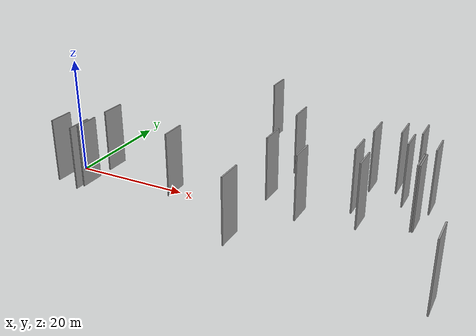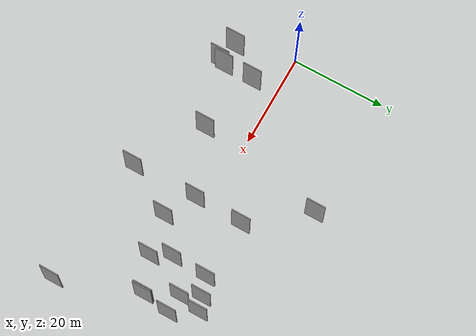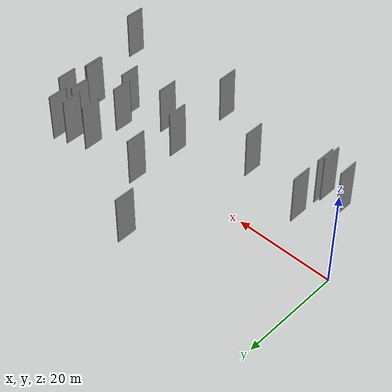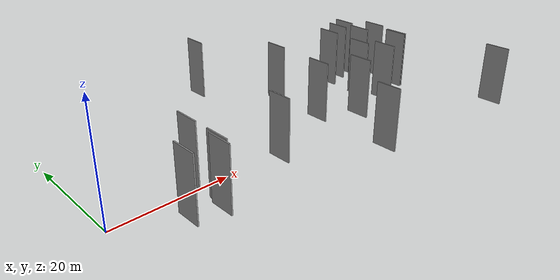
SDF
<sdf version="1.6">
 <world name="default">
  <scene>
   <sky><clouds><speed>12</speed></clouds></sky>
   <ambient>0.4 0.4 0.4 1</ambient>
   <background>0.7 0.7 0.7 1</background>
   <shadows>1</shadows>
  </scene>
  <gravity>0 0 -9.8066</gravity>
  <magnetic_field>6e-06 2.3e-05 -4.2e-05</magnetic_field>
  <physics default="0" name="default_physics" type="ode">
   <ode>
    <solver>
     <type>quick</type>
     <iters>10</iters>
     <sor>1.0</sor>
     <use_dynamic_moi_rescaling>0</use_dynamic_moi_rescaling>
    </solver>
    <constraints>
     <cfm>0</cfm>
     <erp>0.2</erp>
     <contact_max_correcting_vel>100</contact_max_correcting_vel>
     <contact_surface_layer>0.001</contact_surface_layer>
    </constraints>
   </ode>
   <max_step_size>0.004</max_step_size>
   <real_time_factor>1</real_time_factor>
   <real_time_update_rate>250</real_time_update_rate>
  </physics>
  <light name="sun" type="directional">
   <pose>0 0 10 0 0 0</pose>
   <diffuse>0.8 0.8 0.8 1</diffuse>
   <specular>0.2 0.2 0.2 1</specular>
   <attenuation>
    <range>1000</range>
    <constant>0.9</constant>
    <linear>0.01</linear>
    <quadratic>0.001</quadratic>
   </attenuation>
   <direction>-0.5 0.1 -0.9</direction>
  </light>
  <model name="grey_wall_1">
   <static>1</static>
   <pose>56.7683 9.6143 5.0 0.000000 0.000000 1.570796</pose>
   <link name="link">
    <pose>0 0 5.00 0 0 0</pose>
    <collision name="collision"><geometry><box><size>4.00 0.2 10.00</size></box></geometry></collision>
    <visual name="visual">
     <cast_shadows>0</cast_shadows>
     <geometry><box><size>4.00 0.2 10.00</size></box></geometry>
     <material>
      <script>
       <uri>model://grey_wall/materials/scripts</uri>
       <uri>model://grey_wall/materials/textures</uri>
       <name>vrc/grey_wall</name>
      </script>
     </material>
    </visual>
   </link>
  </model>
  <model name="grey_wall_2">
   <static>1</static>
   <pose>28.8676 19.4419 5.0 0.000000 0.000000 1.570796</pose>
   <link name="link">
    <pose>0 0 5.00 0 0 0</pose>
    <collision name="collision"><geometry><box><size>4.00 0.2 10.00</size></box></geometry></collision>
    <visual name="visual">
     <cast_shadows>0</cast_shadows>
     <geometry><box><size>4.00 0.2 10.00</size></box></geometry>
     <material>
      <script>
       <uri>model://grey_wall/materials/scripts</uri>
       <uri>model://grey_wall/materials/textures</uri>
       <name>vrc/grey_wall</name>
      </script>
     </material>
    </visual>
   </link>
  </model>
  <model name="grey_wall_3">
   <static>1</static>
   <pose>43.5349 -5.5277 5.0 0.000000 0.000000 1.570796</pose>
   <link name="link">
    <pose>0 0 5.00 0 0 0</pose>
    <collision name="collision"><geometry><box><size>4.00 0.2 10.00</size></box></geometry></collision>
    <visual name="visual">
     <cast_shadows>0</cast_shadows>
     <geometry><box><size>4.00 0.2 10.00</size></box></geometry>
     <material>
      <script>
       <uri>model://grey_wall/materials/scripts</uri>
       <uri>model://grey_wall/materials/textures</uri>
       <name>vrc/grey_wall</name>
      </script>
     </material>
    </visual>
   </link>
  </model>
  <model name="grey_wall_4">
   <static>1</static>
   <pose>53.9892 8.7683 5.0 0.000000 0.000000 1.570796</pose>
   <link name="link">
    <pose>0 0 5.00 0 0 0</pose>
    <collision name="collision"><geometry><box><size>4.00 0.2 10.00</size></box></geometry></collision>
    <visual name="visual">
     <cast_shadows>0</cast_shadows>
     <geometry><box><size>4.00 0.2 10.00</size></box></geometry>
     <material>
      <script>
       <uri>model://grey_wall/materials/scripts</uri>
       <uri>model://grey_wall/materials/textures</uri>
       <name>vrc/grey_wall</name>
      </script>
     </material>
    </visual>
   </link>
  </model>
  <model name="grey_wall_5">
   <static>1</static>
   <pose>37.7134 -15.6354 5.0 0.000000 0.000000 1.570796</pose>
   <link name="link">
    <pose>0 0 5.00 0 0 0</pose>
    <collision name="collision"><geometry><box><size>4.00 0.2 10.00</size></box></geometry></collision>
    <visual name="visual">
     <cast_shadows>0</cast_shadows>
     <geometry><box><size>4.00 0.2 10.00</size></box></geometry>
     <material>
      <script>
       <uri>model://grey_wall/materials/scripts</uri>
       <uri>model://grey_wall/materials/textures</uri>
       <name>vrc/grey_wall</name>
      </script>
     </material>
    </visual>
   </link>
  </model>
  <model name="grey_wall_6">
   <static>1</static>
   <pose>10.2694 -11.8890 5.0 0.000000 0.000000 1.570796</pose>
   <link name="link">
    <pose>0 0 5.00 0 0 0</pose>
    <collision name="collision"><geometry><box><size>4.00 0.2 10.00</size></box></geometry></collision>
    <visual name="visual">
     <cast_shadows>0</cast_shadows>
     <geometry><box><size>4.00 0.2 10.00</size></box></geometry>
     <material>
      <script>
       <uri>model://grey_wall/materials/scripts</uri>
       <uri>model://grey_wall/materials/textures</uri>
       <name>vrc/grey_wall</name>
      </script>
     </material>
    </visual>
   </link>
  </model>
  <model name="grey_wall_7">
   <static>1</static>
   <pose>50.2299 7.5200 5.0 0.000000 0.000000 1.570796</pose>
   <link name="link">
    <pose>0 0 5.00 0 0 0</pose>
    <collision name="collision"><geometry><box><size>4.00 0.2 10.00</size></box></geometry></collision>
    <visual name="visual">
     <cast_shadows>0</cast_shadows>
     <geometry><box><size>4.00 0.2 10.00</size></box></geometry>
     <material>
      <script>
       <uri>model://grey_wall/materials/scripts</uri>
       <uri>model://grey_wall/materials/textures</uri>
       <name>vrc/grey_wall</name>
      </script>
     </material>
    </visual>
   </link>
  </model>
  <model name="grey_wall_8">
   <static>1</static>
   <pose>59.7958 4.7021 5.0 0.000000 0.000000 1.570796</pose>
   <link name="link">
    <pose>0 0 5.00 0 0 0</pose>
    <collision name="collision"><geometry><box><size>4.00 0.2 10.00</size></box></geometry></collision>
    <visual name="visual">
     <cast_shadows>0</cast_shadows>
     <geometry><box><size>4.00 0.2 10.00</size></box></geometry>
     <material>
      <script>
       <uri>model://grey_wall/materials/scripts</uri>
       <uri>model://grey_wall/materials/textures</uri>
       <name>vrc/grey_wall</name>
      </script>
     </material>
    </visual>
   </link>
  </model>
  <model name="grey_wall_9">
   <static>1</static>
   <pose>55.8156 5.0933 5.0 0.000000 0.000000 1.570796</pose>
   <link name="link">
    <pose>0 0 5.00 0 0 0</pose>
    <collision name="collision"><geometry><box><size>4.00 0.2 10.00</size></box></geometry></collision>
    <visual name="visual">
     <cast_shadows>0</cast_shadows>
     <geometry><box><size>4.00 0.2 10.00</size></box></geometry>
     <material>
      <script>
       <uri>model://grey_wall/materials/scripts</uri>
       <uri>model://grey_wall/materials/textures</uri>
       <name>vrc/grey_wall</name>
      </script>
     </material>
    </visual>
   </link>
  </model>
  <model name="grey_wall_10">
   <static>1</static>
   <pose>10.7528 -10.7816 5.0 0.000000 0.000000 1.570796</pose>
   <link name="link">
    <pose>0 0 5.00 0 0 0</pose>
    <collision name="collision"><geometry><box><size>4.00 0.2 10.00</size></box></geometry></collision>
    <visual name="visual">
     <cast_shadows>0</cast_shadows>
     <geometry><box><size>4.00 0.2 10.00</size></box></geometry>
     <material>
      <script>
       <uri>model://grey_wall/materials/scripts</uri>
       <uri>model://grey_wall/materials/textures</uri>
       <name>vrc/grey_wall</name>
      </script>
     </material>
    </visual>
   </link>
  </model>
  <model name="grey_wall_11">
   <static>1</static>
   <pose>24.0378 -7.4745 5.0 0.000000 0.000000 1.570796</pose>
   <link name="link">
    <pose>0 0 5.00 0 0 0</pose>
    <collision name="collision"><geometry><box><size>4.00 0.2 10.00</size></box></geometry></collision>
    <visual name="visual">
     <cast_shadows>0</cast_shadows>
     <geometry><box><size>4.00 0.2 10.00</size></box></geometry>
     <material>
      <script>
       <uri>model://grey_wall/materials/scripts</uri>
       <uri>model://grey_wall/materials/textures</uri>
       <name>vrc/grey_wall</name>
      </script>
     </material>
    </visual>
   </link>
  </model>
  <model name="grey_wall_12">
   <static>1</static>
   <pose>64.6763 -17.6705 5.0 0.000000 0.000000 1.570796</pose>
   <link name="link">
    <pose>0 0 5.00 0 0 0</pose>
    <collision name="collision"><geometry><box><size>4.00 0.2 10.00</size></box></geometry></collision>
    <visual name="visual">
     <cast_shadows>0</cast_shadows>
     <geometry><box><size>4.00 0.2 10.00</size></box></geometry>
     <material>
      <script>
       <uri>model://grey_wall/materials/scripts</uri>
       <uri>model://grey_wall/materials/textures</uri>
       <name>vrc/grey_wall</name>
      </script>
     </material>
    </visual>
   </link>
  </model>
  <model name="grey_wall_13">
   <static>1</static>
   <pose>49.8615 0.0518 5.0 0.000000 0.000000 1.570796</pose>
   <link name="link">
    <pose>0 0 5.00 0 0 0</pose>
    <collision name="collision"><geometry><box><size>4.00 0.2 10.00</size></box></geometry></collision>
    <visual name="visual">
     <cast_shadows>0</cast_shadows>
     <geometry><box><size>4.00 0.2 10.00</size></box></geometry>
     <material>
      <script>
       <uri>model://grey_wall/materials/scripts</uri>
       <uri>model://grey_wall/materials/textures</uri>
       <name>vrc/grey_wall</name>
      </script>
     </material>
    </visual>
   </link>
  </model>
  <model name="grey_wall_14">
   <static>1</static>
   <pose>37.5154 -1.9658 5.0 0.000000 0.000000 1.570796</pose>
   <link name="link">
    <pose>0 0 5.00 0 0 0</pose>
    <collision name="collision"><geometry><box><size>4.00 0.2 10.00</size></box></geometry></collision>
    <visual name="visual">
     <cast_shadows>0</cast_shadows>
     <geometry><box><size>4.00 0.2 10.00</size></box></geometry>
     <material>
      <script>
       <uri>model://grey_wall/materials/scripts</uri>
       <uri>model://grey_wall/materials/textures</uri>
       <name>vrc/grey_wall</name>
      </script>
     </material>
    </visual>
   </link>
  </model>
  <model name="grey_wall_15">
   <static>1</static>
   <pose>58.8973 -1.0783 5.0 0.000000 0.000000 1.570796</pose>
   <link name="link">
    <pose>0 0 5.00 0 0 0</pose>
    <collision name="collision"><geometry><box><size>4.00 0.2 10.00</size></box></geometry></collision>
    <visual name="visual">
     <cast_shadows>0</cast_shadows>
     <geometry><box><size>4.00 0.2 10.00</size></box></geometry>
     <material>
      <script>
       <uri>model://grey_wall/materials/scripts</uri>
       <uri>model://grey_wall/materials/textures</uri>
       <name>vrc/grey_wall</name>
      </script>
     </material>
    </visual>
   </link>
  </model>
  <model name="grey_wall_16">
   <static>1</static>
   <pose>51.8311 -3.8895 5.0 0.000000 0.000000 1.570796</pose>
   <link name="link">
    <pose>0 0 5.00 0 0 0</pose>
    <collision name="collision"><geometry><box><size>4.00 0.2 10.00</size></box></geometry></collision>
    <visual name="visual">
     <cast_shadows>0</cast_shadows>
     <geometry><box><size>4.00 0.2 10.00</size></box></geometry>
     <material>
      <script>
       <uri>model://grey_wall/materials/scripts</uri>
       <uri>model://grey_wall/materials/textures</uri>
       <name>vrc/grey_wall</name>
      </script>
     </material>
    </visual>
   </link>
  </model>
  <model name="grey_wall_17">
   <static>1</static>
   <pose>10.7741 -4.3902 5.0 0.000000 0.000000 1.570796</pose>
   <link name="link">
    <pose>0 0 5.00 0 0 0</pose>
    <collision name="collision"><geometry><box><size>4.00 0.2 10.00</size></box></geometry></collision>
    <visual name="visual">
     <cast_shadows>0</cast_shadows>
     <geometry><box><size>4.00 0.2 10.00</size></box></geometry>
     <material>
      <script>
       <uri>model://grey_wall/materials/scripts</uri>
       <uri>model://grey_wall/materials/textures</uri>
       <name>vrc/grey_wall</name>
      </script>
     </material>
    </visual>
   </link>
  </model>
  <model name="grey_wall_18">
   <static>1</static>
   <pose>37.7784 8.1866 5.0 0.000000 0.000000 1.570796</pose>
   <link name="link">
    <pose>0 0 5.00 0 0 0</pose>
    <collision name="collision"><geometry><box><size>4.00 0.2 10.00</size></box></geometry></collision>
    <visual name="visual">
     <cast_shadows>0</cast_shadows>
     <geometry><box><size>4.00 0.2 10.00</size></box></geometry>
     <material>
      <script>
       <uri>model://grey_wall/materials/scripts</uri>
       <uri>model://grey_wall/materials/textures</uri>
       <name>vrc/grey_wall</name>
      </script>
     </material>
    </visual>
   </link>
  </model>
  <model name="grey_wall_19">
   <static>1</static>
   <pose>5.9365 -10.8796 5.0 0.000000 0.000000 1.570796</pose>
   <link name="link">
    <pose>0 0 5.00 0 0 0</pose>
    <collision name="collision"><geometry><box><size>4.00 0.2 10.00</size></box></geometry></collision>
    <visual name="visual">
     <cast_shadows>0</cast_shadows>
     <geometry><box><size>4.00 0.2 10.00</size></box></geometry>
     <material>
      <script>
       <uri>model://grey_wall/materials/scripts</uri>
       <uri>model://grey_wall/materials/textures</uri>
       <name>vrc/grey_wall</name>
      </script>
     </material>
    </visual>
   </link>
  </model>
  <model name="grey_wall_20">
   <static>1</static>
   <pose>58.5920 -1.0789 5.0 0.000000 0.000000 1.570796</pose>
   <link name="link">
    <pose>0 0 5.00 0 0 0</pose>
    <collision name="collision"><geometry><box><size>4.00 0.2 10.00</size></box></geometry></collision>
    <visual name="visual">
     <cast_shadows>0</cast_shadows>
     <geometry><box><size>4.00 0.2 10.00</size></box></geometry>
     <material>
      <script>
       <uri>model://grey_wall/materials/scripts</uri>
       <uri>model://grey_wall/materials/textures</uri>
       <name>vrc/grey_wall</name>
      </script>
     </material>
    </visual>
   </link>
  </model>
 </world>
</sdf>
